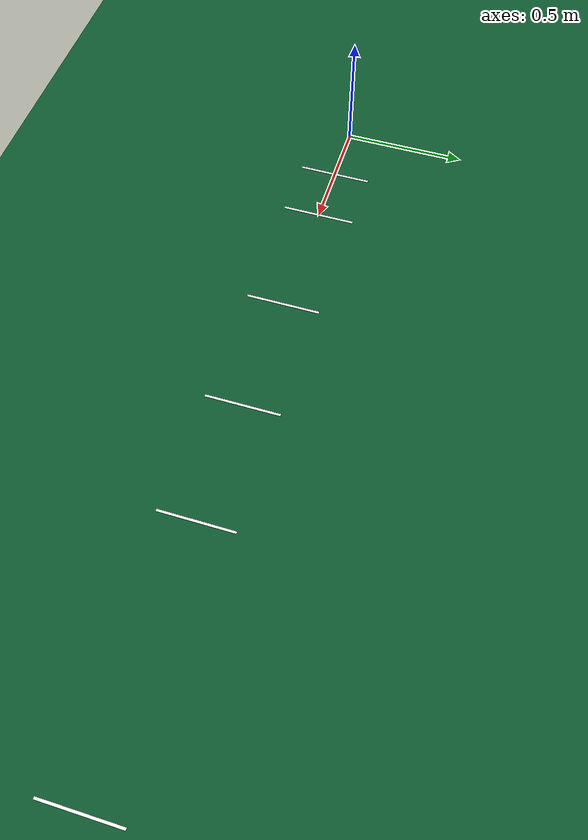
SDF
<?xml version="1.0"?>
<sdf version="1.10">
  <world name="camera_test">

    <physics name="1ms" type="ignored">
      <max_step_size>0.001</max_step_size>
      <real_time_factor>1.0</real_time_factor>
    </physics>

    <plugin filename="gz-sim-physics-system"
            name="gz::sim::systems::Physics"/>
    <plugin filename="gz-sim-user-commands-system"
            name="gz::sim::systems::UserCommands"/>
    <plugin filename="gz-sim-scene-broadcaster-system"
            name="gz::sim::systems::SceneBroadcaster"/>
    <plugin filename="gz-sim-sensors-system"
            name="gz::sim::systems::Sensors">
      <render_engine>ogre2</render_engine>
    </plugin>

    <!-- Publish shuttle GT for range testing, but never remove a shuttle. -->
    <plugin filename="libshuttle_manager_system.so"
            name="scrobot_simulation::ShuttleManagerSystem">
      <robot_model>scrobot</robot_model>
      <update_rate>30.0</update_rate>
      <ground_truth_topic>/evaluation/shuttle_ground_truth_gz</ground_truth_topic>
      <collected_topic>/evaluation/shuttle_collected_gz</collected_topic>
      <collector_link>collector_link</collector_link>
      <pickup_half_length>0.030</pickup_half_length>
      <pickup_half_width>0.150</pickup_half_width>
      <shuttle_center_offset_z>0.045</shuttle_center_offset_z>
      <enable_collection>false</enable_collection>
    </plugin>

    <scene>
      <ambient>0.12 0.12 0.12 1</ambient>
      <background>0.03 0.035 0.04 1</background>
      <shadows>true</shadows>
    </scene>

    <light type="directional" name="camera_test_light">
      <pose>0 0 6 0 0 0</pose>
      <diffuse>0.95 0.95 0.92 1</diffuse>
      <specular>0.12 0.12 0.12 1</specular>
      <direction>-0.15 0.10 -1.0</direction>
      <cast_shadows>true</cast_shadows>
    </light>

    <model name="camera_test_floor">
      <static>true</static>
      <link name="floor_link">
        <collision name="floor_collision">
          <geometry>
            <box><size>12 8 0.02</size></box>
          </geometry>
          <surface>
            <friction>
              <ode><mu>1.0</mu><mu2>1.0</mu2></ode>
            </friction>
          </surface>
        </collision>

        <visual name="floor_visual">
          <geometry>
            <box><size>12 8 0.02</size></box>
          </geometry>
          <material>
            <ambient>0.045 0.265 0.145 1</ambient>
            <diffuse>0.055 0.345 0.185 1</diffuse>
            <specular>0.015 0.015 0.015 1</specular>
          </material>
        </visual>
      </link>
      <pose>0 0 -0.01 0 0 0</pose>
    </model>

    <!-- Distance references on the robot +X centerline. -->
    <model name="camera_range_marks">
      <static>true</static>
      <link name="marks">
        <visual name="mark_025">
          <pose>0.25 0 0.001 0 0 0</pose>
          <geometry><box><size>0.01 0.30 0.002</size></box></geometry>
          <material><ambient>1 1 1 1</ambient><diffuse>1 1 1 1</diffuse></material>
        </visual>
        <visual name="mark_050">
          <pose>0.50 0 0.001 0 0 0</pose>
          <geometry><box><size>0.01 0.30 0.002</size></box></geometry>
          <material><ambient>1 1 1 1</ambient><diffuse>1 1 1 1</diffuse></material>
        </visual>
        <visual name="mark_100">
          <pose>1.00 0 0.001 0 0 0</pose>
          <geometry><box><size>0.01 0.30 0.002</size></box></geometry>
          <material><ambient>1 1 1 1</ambient><diffuse>1 1 1 1</diffuse></material>
        </visual>
        <visual name="mark_150">
          <pose>1.50 0 0.001 0 0 0</pose>
          <geometry><box><size>0.01 0.30 0.002</size></box></geometry>
          <material><ambient>1 1 1 1</ambient><diffuse>1 1 1 1</diffuse></material>
        </visual>
        <visual name="mark_200">
          <pose>2.00 0 0.001 0 0 0</pose>
          <geometry><box><size>0.01 0.30 0.002</size></box></geometry>
          <material><ambient>1 1 1 1</ambient><diffuse>1 1 1 1</diffuse></material>
        </visual>
        <visual name="mark_300">
          <pose>3.00 0 0.001 0 0 0</pose>
          <geometry><box><size>0.01 0.30 0.002</size></box></geometry>
          <material><ambient>1 1 1 1</ambient><diffuse>1 1 1 1</diffuse></material>
        </visual>
      </link>
    </model>

  </world>
</sdf>
